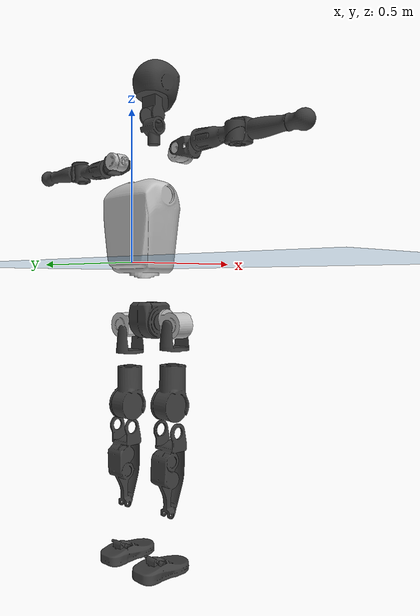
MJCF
<mujoco model="T1">
  <compiler angle="radian" assetdir="assets" balanceinertia="true" inertiafromgeom="false"/>

  <option timestep="0.005" density="1.2" viscosity="2e-05"/>

  <size nkey="1"/>

  <visual>
    <quality shadowsize="8192"/>
    <map shadowclip="0.5"/>
  </visual>

  <default>
    <default class="/">
      <joint armature="0.01" damping="0.01" frictionloss="0.1"/>
      <geom contype="0" conaffinity="0" group="1" solref="-1000 -80"/>
      <site size="0.01 0.005 0.005" group="5"/>
      <general forcelimited="true" biastype="affine" gainprm="25" biasprm="0 -25 -0.6"/>
      <default class="t1">
        <geom rgba="0.25 0.25 0.25 1"/>
        <default class="visual">
          <geom type="mesh" group="2"/>
        </default>
        <default class="collision">
          <geom group="3"/>
        </default>
        <default class="foot">
          <geom size="0.1115 0.05 0.015" type="box" condim="6" group="4" priority="1" solimp="0.015 1 0.015"/>
        </default>
        <default class="reward_collision_sphere">
          <geom group="5" rgba="1 0 0 1"/>
        </default>
      </default>
    </default>
  </default>

  <asset>
    <texture type="skybox" colorspace="auto" name="//unnamed_texture_0" builtin="gradient" rgb1="0.95 0.95 0.95" rgb2="0.95 0.95 0.95" width="100" height="600"/>
    <texture type="2d" colorspace="auto" name="texplane" builtin="checker" rgb1="0.345 0.575 0.748" rgb2="0.345 0.575 0.748" markrgb="1 1 1" width="512" height="512"/>
    <material name="MatPlane" class="/" texture="texplane" texuniform="true" texrepeat="2 2" specular="0.9"/>
    <mesh name="Trunk" class="/" file="Trunk.stl"/>
    <mesh name="H1" class="/" file="H1.stl"/>
    <mesh name="H2" class="/" file="H2.stl"/>
    <mesh name="AL1" class="/" file="AL1.stl"/>
    <mesh name="AL2" class="/" file="AL2.stl"/>
    <mesh name="AL3" class="/" file="AL3.stl"/>
    <mesh name="left_hand_link" class="/" file="left_hand_link.stl"/>
    <mesh name="AR1" class="/" file="AR1.stl"/>
    <mesh name="AR2" class="/" file="AR2.stl"/>
    <mesh name="AR3" class="/" file="AR3.stl"/>
    <mesh name="right_hand_link" class="/" file="right_hand_link.stl"/>
    <mesh name="Waist" class="/" file="Waist.stl"/>
    <mesh name="Hip_Pitch_Left" class="/" file="Hip_Pitch_Left.stl"/>
    <mesh name="Hip_Roll_Left" class="/" file="Hip_Roll_Left.stl"/>
    <mesh name="Hip_Yaw_Left" class="/" file="Hip_Yaw_Left.stl"/>
    <mesh name="Shank_Left" class="/" file="Shank_Left.stl"/>
    <mesh name="Ankle_Cross_Left" class="/" file="Ankle_Cross_Left.stl"/>
    <mesh name="left_foot_link" class="/" file="left_foot_link.stl"/>
    <mesh name="Hip_Pitch_Right" class="/" file="Hip_Pitch_Right.stl"/>
    <mesh name="Hip_Roll_Right" class="/" file="Hip_Roll_Right.stl"/>
    <mesh name="Hip_Yaw_Right" class="/" file="Hip_Yaw_Right.stl"/>
    <mesh name="Shank_Right" class="/" file="Shank_Right.stl"/>
    <mesh name="Ankle_Cross_Right" class="/" file="Ankle_Cross_Right.stl"/>
    <mesh name="right_foot_link" class="/" file="right_foot_link.stl"/>
  </asset>

  <worldbody>
    <geom name="floor" class="/" size="100 100 0.125" type="plane" group="0" material="MatPlane"/>
    <light name="toplight_shadow" class="/" pos="0 0 5" dir="0.0990148 0.0990148 -0.990148" type="directional" ambient="0.04 0.04 0.04" diffuse="0.55 0.55 0.55" specular="0.12 0.12 0.12"/>
    <light name="toplight_fill" class="/" pos="0 0 5" dir="0.0990148 0.0990148 -0.990148" type="directional" castshadow="false" ambient="0.04 0.04 0.04" diffuse="0.3 0.3 0.3" specular="0.08 0.08 0.08"/>
    <body name="trunk" childclass="t1" pos="0.000580816 0.0078487 -0.00126785" quat="0.999986 -0.0036763 0.00235944 0.00306817">
      <inertial pos="0.0834286 0.005966 0.168842" quat="0.998309 0.0141181 -0.0347714 0.0443904" mass="33.7081" diaginertia="0.578293 0.130418 0.498362"/>
      <joint name="//unnamed_joint_0" type="free" armature="0" damping="0" frictionloss="0"/>
      <geom name="//unnamed_geom_1" class="visual" rgba="0.76 0.76 0.76 1" mesh="Trunk"/>
      <geom name="//unnamed_geom_2" class="collision" size="0.107043 0.142723 0.214085" pos="0.0934421 0 0.192766" type="box"/>
      <geom name="//unnamed_geom_3" class="reward_collision_sphere" size="0.164132" pos="0.0934421 0 0.160638"/>
      <geom name="//unnamed_geom_4" class="reward_collision_sphere" size="0.0214085" pos="0.0934421 0.0950259 0"/>
      <geom name="//unnamed_geom_5" class="reward_collision_sphere" size="0.0214085" pos="0.0934421 -0.0950259 0"/>
      <geom name="//unnamed_geom_6" class="reward_collision_sphere" size="0.0214085" pos="0.0934421 0.119621 0.289149"/>
      <geom name="//unnamed_geom_7" class="reward_collision_sphere" size="0.0214085" pos="0.0934421 -0.119621 0.289149"/>
      <site name="imu" pos="-0.051602 0.00217802 0.0507942" size="0.0142723"/>
      <camera name="track" pos="0 -2.2359 0" quat="0.707107 0.707107 0 0" mode="trackcom"/>
      <camera name="ego_camera" pos="0.189999 0 0.674681" quat="-0.5 -0.5 0.5 0.5"/>
      <body name="H1" pos="0.10877 -7.04548e-05 0.404097" quat="1 0.000357537 -9.69197e-05 0.000344973">
        <inertial pos="-0.000786799 -0.000263104 0.0925867" quat="0.763288 -0.0126767 0.00205117 0.64593" mass="1.26414" diaginertia="0.00247177 0.000368016 0.00159134"/>
        <joint name="AAHead_yaw" pos="0 0 0" axis="0.000207879 0.0154422 0.999881" range="-1.7758 1.55581" armature="0.00448304" damping="0.00226018" frictionloss="0.0495555"/>
        <geom name="//unnamed_geom_8" class="visual" mesh="H1"/>
        <body name="H2" pos="0.00688847 0.0157595 0.1039" quat="0.999995 0.00275592 0.00108304 -0.00120455">
          <inertial pos="0.000648153 0.0133076 0.173242" quat="0.984103 0.145998 -0.0358356 -0.0945589" mass="1.64974" diaginertia="0.0178999 0.00393422 0.0183617"/>
          <joint name="Head_pitch" pos="0 0 0" axis="-0.0128922 -0.999603 -0.0250327" range="-1.26892 0.43885" armature="0.00758651" damping="0.0725791" frictionloss="0.125136"/>
          <geom name="//unnamed_geom_9" class="visual" mesh="H2"/>
          <geom name="//unnamed_geom_10" class="collision" size="0.114179" pos="0.0155737 0 0.176702"/>
          <geom name="//unnamed_geom_11" class="reward_collision_sphere" size="0.128451" pos="0.0311474 0 0.160638"/>
        </body>
      </body>
      <body name="AL1" pos="0.086009 0.118434 0.365432" quat="0.999975 0.000905861 -0.000592379 -0.00699239">
        <inertial pos="0.00829708 0.0483187 0.00149299" quat="0.504985 0.499419 -0.50155 0.493983" mass="1.69159" diaginertia="0.0136655 0.00293054 0.00397187"/>
        <joint name="Left_Shoulder_Pitch" pos="0 0 0" axis="-0.0482296 0.998623 -0.0206395" range="-3.13833 0.935859" armature="0.0134919" damping="0.0736392" frictionloss="0.0850927"/>
        <geom name="//unnamed_geom_12" class="visual" rgba="0.76 0.76 0.76 1" mesh="AL1"/>
        <body name="AL2" pos="0.0130047 0.0465269 -0.00580539" quat="1 5.34339e-05 -0.000129037 -0.00011594">
          <inertial pos="0.0128797 0.0289257 0.00761056" quat="0.494964 0.514016 -0.491139 0.499581" mass="0.421591" diaginertia="0.00324271 0.000509759 0.00184969"/>
          <joint name="Left_Shoulder_Roll" pos="0 0 0" axis="-0.999898 0.0140153 -0.00283688" stiffness="0.0782003" range="-1.72495 1.7146" armature="0.00433489" damping="0.00570682" frictionloss="0.150189"/>
          <geom name="//unnamed_geom_13" class="visual" mesh="AL2"/>
          <body name="AL3" pos="-0.00553895 0.0688356 -0.00826149" quat="0.999998 -0.000914767 0.00182872 6.08407e-05">
            <inertial pos="-0.0126222 0.109032 -0.0065403" quat="0.689426 0.723494 -0.00842176 0.0343017" mass="3.94097" diaginertia="0.114316 0.0252364 0.00859107"/>
            <joint name="Left_Elbow_Pitch" pos="0 0 0" axis="-0.0310779 -0.999299 0.0208846" stiffness="0.0331703" range="-1.98116 2.40028" armature="0.00341274" damping="0.0289166" frictionloss="0.145292"/>
            <geom name="//unnamed_geom_14" class="visual" mesh="AL3"/>
            <geom name="//unnamed_geom_15" class="collision" size="0.042817 0.107043" pos="0 0.0558976 0" quat="0.707105 0.707108 0 0" type="cylinder"/>
            <geom name="//unnamed_geom_16" class="reward_collision_sphere" size="0.0513804"/>
            <body name="left_hand_link" pos="0.00426653 0.161179 0.00953408" quat="0.999975 0.00187958 0.00072136 0.00677514">
              <inertial pos="0.0143763 0.115749 -0.000794345" quat="0.694079 0.719828 0.00130067 -0.00997967" mass="0.933041" diaginertia="0.0854142 0.012827 0.00190224"/>
              <joint name="Left_Elbow_Yaw" pos="0 0 0" axis="0.00171267 0.000897799 0.999998" range="-2.415 0.293499" armature="0.0162281" damping="0" frictionloss="0.142713"/>
              <geom name="//unnamed_geom_17" class="visual" mesh="left_hand_link"/>
              <geom name="//unnamed_geom_18" class="collision" size="0.042817 0.124883" pos="0 0.145334 0" quat="0.707105 0.707108 0 0" type="cylinder"/>
              <geom name="//unnamed_geom_19" class="reward_collision_sphere" size="0.0713617"/>
              <geom name="//unnamed_geom_20" class="reward_collision_sphere" size="0.0499532" pos="0 0.122975 0"/>
              <geom name="//unnamed_geom_21" class="reward_collision_sphere" size="0.0499532" pos="0 0.24036 0"/>
            </body>
          </body>
        </body>
      </body>
      <body name="AR1" pos="0.0833549 -0.105755 0.349006" quat="0.999994 0.000104045 0.00222207 0.00264803">
        <inertial pos="0.00823229 -0.0347605 0.0042885" quat="0.46723 0.510226 -0.503968 0.517089" mass="1.65586" diaginertia="0.0157782 0.00263302 0.00331037"/>
        <joint name="Right_Shoulder_Pitch" pos="0 0 0" axis="-0.0521498 -0.998121 0.0321566" stiffness="0.0765997" range="-1.22895 3.47163" armature="0.00548271" damping="0.0415306" frictionloss="0.196042"/>
        <geom name="//unnamed_geom_22" class="visual" rgba="0.76 0.76 0.76 1" mesh="AR1"/>
        <body name="AR2" pos="-0.0146255 -0.0620902 0.00867964" quat="0.999978 0.00513954 -0.0040601 0.000479062">
          <inertial pos="0.0154325 -0.0429214 0.00607172" quat="0.51747 0.45716 -0.525156 0.497435" mass="0.544534" diaginertia="0.00371642 0.000506289 0.00199449"/>
          <joint name="Right_Shoulder_Roll" pos="0 0 0" axis="-0.999866 -0.0163368 0.000437074" stiffness="0.00745856" range="-1.86139 1.45769" armature="0.0149522" damping="0" frictionloss="0.0316925"/>
          <geom name="//unnamed_geom_23" class="visual" mesh="AR2"/>
          <body name="AR3" pos="-0.00883104 -0.0736408 0.0158296" quat="1 -3.78095e-05 1.10576e-05 -0.000151267">
            <inertial pos="-0.00075188 -0.0822077 0.00681493" quat="0.733981 0.677448 -0.0262 -0.0406214" mass="2.97399" diaginertia="0.11817 0.0237583 0.00565841"/>
            <joint name="Right_Elbow_Pitch" pos="0 0 0" axis="-0.0515442 0.998004 0.0364726" range="-2.01685 2.44535" armature="0.024353" damping="0" frictionloss="0.0746904"/>
            <geom name="//unnamed_geom_24" class="visual" mesh="AR3"/>
            <geom name="//unnamed_geom_25" class="collision" size="0.042817 0.107043" pos="0 -0.0558976 0" quat="0.707105 0.707108 0 0" type="cylinder"/>
            <geom name="//unnamed_geom_26" class="reward_collision_sphere" size="0.0513804"/>
            <body name="right_hand_link" pos="0.000205911 -0.162614 -0.00134127" quat="0.999983 0.00489092 0.00236343 -0.00208813">
              <inertial pos="-0.0011345 -0.115093 -0.012408" quat="0.705229 0.708976 -0.00144876 0.00181304" mass="1.08194" diaginertia="0.0837736 0.0152922 0.00249427"/>
              <joint name="Right_Elbow_Yaw" pos="0 0 0" axis="-0.0144516 -0.0434761 0.99895" range="0.021897 2.24717" armature="0.00469243" damping="0.0862163" frictionloss="0.0674524"/>
              <geom name="//unnamed_geom_27" class="visual" mesh="right_hand_link"/>
              <geom name="//unnamed_geom_28" class="collision" size="0.042817 0.124883" pos="0 -0.145334 0" quat="0.707105 0.707108 0 0" type="cylinder"/>
              <geom name="//unnamed_geom_29" class="reward_collision_sphere" size="0.0713617"/>
              <geom name="//unnamed_geom_30" class="reward_collision_sphere" size="0.0499532" pos="0 -0.122975 0"/>
              <geom name="//unnamed_geom_31" class="reward_collision_sphere" size="0.0499532" pos="0 -0.24036 0"/>
            </body>
          </body>
        </body>
      </body>
      <body name="Waist" pos="0.0996588 0.0119079 -0.200096" quat="1 9.7565e-05 0.000203014 7.92098e-05">
        <inertial pos="0.0165789 0.00378696 0.00874581" quat="0.97203 0.0248925 -0.23205 0.0262696" mass="9.00669" diaginertia="0.0566786 0.0112364 0.059874"/>
        <joint name="Waist" pos="0 0 0" axis="0.0064821 -0.0634501 0.997964" stiffness="0.0423771" range="-1.63995 1.83057" armature="0.0142047" damping="0" frictionloss="0.0542565"/>
        <geom name="//unnamed_geom_32" class="visual" mesh="Waist"/>
        <body name="Hip_Pitch_Left" pos="-0.000871151 0.120104 0.00347375" quat="0.999992 -0.00114557 0.00370583 -0.000318009">
          <inertial pos="0.00284155 -0.000755657 -0.0277908" quat="0.972704 0.231978 -0.000301514 -0.00566137" mass="2.6507" diaginertia="0.0164347 0.00208361 0.0120248"/>
          <joint name="Left_Hip_Pitch" pos="0 0 0" axis="-0.0780712 0.996868 -0.0125909" stiffness="0.0717512" range="-1.77315 1.28465" armature="0.00886188" damping="0.0650635" frictionloss="0.145158"/>
          <geom name="//unnamed_geom_33" class="visual" rgba="0.76 0.76 0.76 1" mesh="Hip_Pitch_Left"/>
          <body name="Hip_Roll_Left" pos="0.00520117 -0.015888 -0.0442337" quat="0.99997 -0.00703053 0.00194257 0.00248814">
            <inertial pos="0.0132016 0.000328741 -0.0896144" quat="0.717768 -0.0216135 -0.0215253 0.695613" mass="1.38835" diaginertia="0.0158093 0.00310692 0.00653302"/>
            <joint name="Left_Hip_Roll" pos="0 0 0" axis="-0.997483 0.0706263 0.00625909" range="-1.70408 0.195992" armature="0.0197768" damping="0.0180811" frictionloss="0.167581"/>
            <geom name="//unnamed_geom_34" class="visual" mesh="Hip_Roll_Left"/>
            <geom name="//unnamed_geom_35" class="reward_collision_sphere" size="0.0784979"/>
            <body name="Hip_Yaw_Left" pos="-0.00647499 -0.00271968 -0.124745" quat="1 0.000384709 -0.000280343 8.74305e-05">
              <inertial pos="-0.012568 -0.00454913 -0.142564" quat="0.718671 0.0254279 -0.00932187 0.694822" mass="7.96362" diaginertia="0.235026 0.0532521 0.0321927"/>
              <joint name="Left_Hip_Yaw" pos="0 0 0" axis="-0.00167566 0.00207978 -0.999996" range="-0.790606 1.03369" armature="0.0142751" damping="0" frictionloss="0.13059"/>
              <geom name="//unnamed_geom_36" class="visual" mesh="Hip_Yaw_Left"/>
              <geom name="//unnamed_geom_37" class="collision" size="0.0713617 0.114179" type="cylinder"/>
              <body name="Shank_Left" pos="-0.0160546 0.0131068 -0.215321" quat="1 -0.000518247 -3.42137e-05 -5.25134e-05">
                <inertial pos="-0.00302636 0.011294 -0.198277" quat="0.995625 -0.0291908 0.0219443 0.086002" mass="3.99977" diaginertia="0.285068 0.053664 0.020624"/>
                <joint name="Left_Knee_Pitch" pos="0 0 0" axis="0.0268893 0.999588 -0.00999222" range="-0.12281 2.49614" armature="0.0055963" damping="0.0626671" frictionloss="0.17323"/>
                <geom name="//unnamed_geom_38" class="visual" mesh="Shank_Left"/>
                <geom name="//unnamed_geom_39" class="collision" size="0.0713617 0.107043" pos="0 0 -0.192766" type="cylinder"/>
                <geom name="//unnamed_geom_40" class="reward_collision_sphere" size="0.0927702"/>
                <body name="Ankle_Cross_Left" pos="0.000255327 -0.0103628 -0.437961" quat="0.999979 -0.00494335 -0.0019161 0.00383444">
                  <inertial pos="0.00166546 0.0148201 -0.0103451" quat="0.443393 0.592596 0.526002 0.418991" mass="0.21635" diaginertia="0.000266799 3.8178e-05 0.00010659"/>
                  <joint name="Left_Ankle_Pitch" pos="0 0 0" axis="0.0228175 0.998886 0.041314" stiffness="0.0216204" range="-0.943014 0.243386" armature="0.0180841" damping="0.0130336" frictionloss="0.130849"/>
                  <geom name="//unnamed_geom_41" class="visual" mesh="Ankle_Cross_Left"/>
                  <body name="left_foot_link" pos="0.0119569 0.0145276 -0.013852" quat="1 0.000336395 0.00030946 6.81048e-05">
                    <inertial pos="-0.0130211 0.00113926 -0.0299055" quat="-0.000763511 0.606899 0.0129782 0.794673" mass="2.0544" diaginertia="0.0272696 0.00421262 0.026562"/>
                    <joint name="Left_Ankle_Roll" pos="0 0 0" axis="-0.999987 -0.00510563 -0.000751239" range="-0.45187 0.443335" armature="0.0240796" damping="0.0543365" frictionloss="0.140966"/>
                    <geom name="//unnamed_geom_42" class="visual" mesh="left_foot_link"/>
                    <geom name="left_foot" class="foot" size="0.128538 0.0989313 0.0177131" pos="0.0155737 0 -0.0240957"/>
                    <geom name="//unnamed_geom_44" class="reward_collision_sphere" size="0.0742162" pos="0.0155737 0 -0.0240957"/>
                    <geom name="//unnamed_geom_45" class="reward_collision_sphere" size="0.042817" pos="0.14795 -0.0257129 -0.0240957"/>
                    <geom name="//unnamed_geom_46" class="reward_collision_sphere" size="0.042817" pos="-0.109016 -0.0257129 -0.0240957"/>
                    <site name="left_foot" class="foot" pos="0.0155737 0 -0.0240957" size="0.0142723"/>
                  </body>
                </body>
              </body>
            </body>
          </body>
        </body>
        <body name="Hip_Pitch_Right" pos="0.0112962 -0.119665 0.00959421" quat="0.999971 -0.00077346 0.00714068 -0.00244872">
          <inertial pos="0.0040122 0.0243516 -0.030132" quat="0.975204 -0.215573 0.040302 0.0296878" mass="3.07793" diaginertia="0.0194702 0.00295808 0.0167563"/>
          <joint name="Right_Hip_Pitch" pos="0 0 0" axis="-0.00242259 -0.999997 0.00020436" stiffness="0.0283785" range="-1.35901 1.8228" armature="0.0196393" damping="0.00855004" frictionloss="0.0398964"/>
          <geom name="//unnamed_geom_47" class="visual" rgba="0.76 0.76 0.76 1" mesh="Hip_Pitch_Right"/>
          <body name="Hip_Roll_Right" pos="-0.00306737 0.00632231 -0.0257504" quat="1 -9.00559e-06 -0.000340073 -0.000273116">
            <inertial pos="0.0150493 -0.0152046 -0.0717172" quat="0.713566 0.0243667 0.00946391 0.7001" mass="1.05328" diaginertia="0.0147107 0.00257969 0.00538044"/>
            <joint name="Right_Hip_Roll" pos="0 0 0" axis="-1 -0.000142789 -0.000485487" range="-0.161303 1.5736" armature="0.00913088" damping="0" frictionloss="0.126177"/>
            <geom name="//unnamed_geom_48" class="visual" mesh="Hip_Roll_Right"/>
            <geom name="//unnamed_geom_49" class="reward_collision_sphere" size="0.0784979"/>
            <body name="Hip_Yaw_Right" pos="0.00092797 0.00959509 -0.128401" quat="0.999994 0.00252762 -0.000210727 0.00251134">
              <inertial pos="-0.0204916 0.00944211 -0.147441" quat="0.716715 -0.0290094 -0.034893 0.695888" mass="6.45793" diaginertia="0.205313 0.0442188 0.0266026"/>
              <joint name="Right_Hip_Yaw" pos="0 0 0" axis="0.00418378 0.00568116 -0.999975" stiffness="0.00770938" range="-0.938323 1.24121" armature="0.0255154" damping="0" frictionloss="0.0448747"/>
              <geom name="//unnamed_geom_50" class="visual" mesh="Hip_Yaw_Right"/>
              <geom name="//unnamed_geom_51" class="collision" size="0.0713617 0.114179" type="cylinder"/>
              <body name="Shank_Right" pos="-0.0278793 -0.0139604 -0.218345" quat="0.999978 -0.000204911 0.00651428 -0.000847538">
                <inertial pos="-0.00945087 -0.0113236 -0.211466" quat="0.996913 0.0361529 -0.0183802 -0.0672303" mass="5.90094" diaginertia="0.355378 0.061626 0.0167798"/>
                <joint name="Right_Knee_Pitch" pos="0 0 0" axis="-0.0444112 -0.998027 0.0443863" stiffness="0.000719346" range="-2.5831 0.235581" armature="0.0165557" damping="0" frictionloss="0.187043"/>
                <geom name="//unnamed_geom_52" class="visual" mesh="Shank_Right"/>
                <geom name="//unnamed_geom_53" class="collision" size="0.0713617 0.107043" pos="0 0 -0.192766" type="cylinder"/>
                <geom name="//unnamed_geom_54" class="reward_collision_sphere" size="0.0927702"/>
                <body name="Ankle_Cross_Right" pos="-0.00821395 0.0122219 -0.451989" quat="0.999968 3.68325e-05 0.00791114 0.000865414">
                  <inertial pos="0.000330476 0.00588849 -0.0239028" quat="0.444256 0.579844 0.521682 0.440755" mass="0.208572" diaginertia="0.000248721 4.48994e-05 0.000138518"/>
                  <joint name="Right_Ankle_Pitch" pos="0 0 0" axis="-0.0131158 -0.99954 -0.0273277" stiffness="0.0151435" range="-0.107822 0.836369" armature="0.0133418" damping="0.00138997" frictionloss="0.161462"/>
                  <geom name="//unnamed_geom_55" class="visual" mesh="Ankle_Cross_Right"/>
                  <body name="right_foot_link" pos="0.00523459 0.0127382 -0.0116283" quat="0.999998 0.00174037 -0.000664973 0.000243414">
                    <inertial pos="0.000638253 -0.00573978 -0.00279436" quat="-0.0168198 0.618855 0.0135884 0.785208" mass="2.1508" diaginertia="0.0244549 0.00414592 0.0265488"/>
                    <joint name="Right_Ankle_Roll" pos="0 0 0" axis="-0.998694 0.00876347 0.0503332" stiffness="0.046882" range="-0.757615 0.459797" armature="0.00507845" damping="0.0106445" frictionloss="0.216029"/>
                    <geom name="//unnamed_geom_56" class="visual" mesh="right_foot_link"/>
                    <geom name="right_foot" class="foot" size="0.159608 0.0984734 0.0199899" pos="0.0155737 0 -0.0240957"/>
                    <geom name="//unnamed_geom_58" class="reward_collision_sphere" size="0.0570894"/>
                    <geom name="//unnamed_geom_59" class="reward_collision_sphere" size="0.042817" pos="0.0155737 0 -0.0240957"/>
                    <geom name="//unnamed_geom_60" class="reward_collision_sphere" size="0.042817" pos="0.14795 0.0257129 -0.0240957"/>
                    <geom name="//unnamed_geom_61" class="reward_collision_sphere" size="0.042817" pos="-0.109016 0.0257129 -0.0240957"/>
                    <site name="right_foot" class="foot" pos="0.0155737 0 -0.0240957" size="0.0142723"/>
                  </body>
                </body>
              </body>
            </body>
          </body>
        </body>
      </body>
    </body>
  </worldbody>

  <contact>
    <pair class="/" geom1="floor" geom2="left_foot" name="//unnamed_contact_0"/>
    <pair class="/" geom1="floor" geom2="right_foot" name="//unnamed_contact_1"/>
  </contact>

  <actuator>
    <general name="AAHead_yaw" class="/" joint="AAHead_yaw" forcerange="-13.2955 13.2955" gainprm="39.6822" biasprm="0 -39.6822 -0.93067"/>
    <general name="Head_pitch" class="/" joint="Head_pitch" forcerange="-6.24838 6.24838" gainprm="39.6822" biasprm="0 -39.6822 -0.93067"/>
    <general name="Left_Shoulder_Pitch" class="/" joint="Left_Shoulder_Pitch" forcerange="-28.3104 28.3104" gainprm="39.6822" biasprm="0 -39.6822 -0.93067"/>
    <general name="Left_Shoulder_Roll" class="/" joint="Left_Shoulder_Roll" forcerange="-13.6618 13.6618" gainprm="39.6822" biasprm="0 -39.6822 -0.93067"/>
    <general name="Left_Elbow_Pitch" class="/" joint="Left_Elbow_Pitch" forcerange="-27.8278 27.8278" gainprm="39.6822" biasprm="0 -39.6822 -0.93067"/>
    <general name="Left_Elbow_Yaw" class="/" joint="Left_Elbow_Yaw" forcerange="-26.7861 26.7861" gainprm="39.6822" biasprm="0 -39.6822 -0.93067"/>
    <general name="Right_Shoulder_Pitch" class="/" joint="Right_Shoulder_Pitch" forcerange="-26.0291 26.0291" gainprm="39.6822" biasprm="0 -39.6822 -0.93067"/>
    <general name="Right_Shoulder_Roll" class="/" joint="Right_Shoulder_Roll" forcerange="-31.4387 31.4387" gainprm="39.6822" biasprm="0 -39.6822 -0.93067"/>
    <general name="Right_Elbow_Pitch" class="/" joint="Right_Elbow_Pitch" forcerange="-22.1706 22.1706" gainprm="39.6822" biasprm="0 -39.6822 -0.93067"/>
    <general name="Right_Elbow_Yaw" class="/" joint="Right_Elbow_Yaw" forcerange="-29.4274 29.4274" gainprm="39.6822" biasprm="0 -39.6822 -0.93067"/>
    <general name="Waist" class="/" joint="Waist" forcerange="-63.0138 63.0138" gainprm="39.6822" biasprm="0 -39.6822 -0.93067"/>
    <general name="Left_Hip_Pitch" class="/" joint="Left_Hip_Pitch" forcerange="-77.4842 77.4842" gainprm="39.6822" biasprm="0 -39.6822 -0.93067"/>
    <general name="Left_Hip_Roll" class="/" joint="Left_Hip_Roll" forcerange="-43.0823 43.0823" gainprm="39.6822" biasprm="0 -39.6822 -0.93067"/>
    <general name="Left_Hip_Yaw" class="/" joint="Left_Hip_Yaw" forcerange="-48.7078 48.7078" gainprm="39.6822" biasprm="0 -39.6822 -0.93067"/>
    <general name="Left_Knee_Pitch" class="/" joint="Left_Knee_Pitch" forcerange="-123.257 123.257" gainprm="39.6822" biasprm="0 -39.6822 -0.93067"/>
    <general name="Left_Ankle_Pitch" class="/" joint="Left_Ankle_Pitch" forcerange="-12.4767 12.4767" gainprm="39.6822" biasprm="0 -39.6822 -0.93067"/>
    <general name="Left_Ankle_Roll" class="/" joint="Left_Ankle_Roll" forcerange="-34.0869 34.0869" gainprm="39.6822" biasprm="0 -39.6822 -0.93067"/>
    <general name="Right_Hip_Pitch" class="/" joint="Right_Hip_Pitch" forcerange="-67.8821 67.8821" gainprm="39.6822" biasprm="0 -39.6822 -0.93067"/>
    <general name="Right_Hip_Roll" class="/" joint="Right_Hip_Roll" forcerange="-61.7345 61.7345" gainprm="39.6822" biasprm="0 -39.6822 -0.93067"/>
    <general name="Right_Hip_Yaw" class="/" joint="Right_Hip_Yaw" forcerange="-20.8128 20.8128" gainprm="39.6822" biasprm="0 -39.6822 -0.93067"/>
    <general name="Right_Knee_Pitch" class="/" joint="Right_Knee_Pitch" forcerange="-70.5285 70.5285" gainprm="39.6822" biasprm="0 -39.6822 -0.93067"/>
    <general name="Right_Ankle_Pitch" class="/" joint="Right_Ankle_Pitch" forcerange="-27.4464 27.4464" gainprm="39.6822" biasprm="0 -39.6822 -0.93067"/>
    <general name="Right_Ankle_Roll" class="/" joint="Right_Ankle_Roll" forcerange="-20.7625 20.7625" gainprm="39.6822" biasprm="0 -39.6822 -0.93067"/>
  </actuator>

  <sensor>
    <gyro site="imu" name="imu_angular_velocity"/>
    <velocimeter site="imu" name="imu_linear_velocity"/>
    <framelinvel objtype="site" objname="left_foot" name="left_foot_global_linear_velocity"/>
    <framelinvel objtype="site" objname="right_foot" name="right_foot_global_linear_velocity"/>
  </sensor>

  <keyframe>
    <key name="home" qpos="0 0 0.6385 1 0 0 0 0 0 0 1.4 0 -0.4 0 -1.4 0 0.4 0 -0.4 0 0 0.8 -0.4 0 0.4 0 0 -0.8 0.4 0"/>
  </keyframe>
</mujoco>
